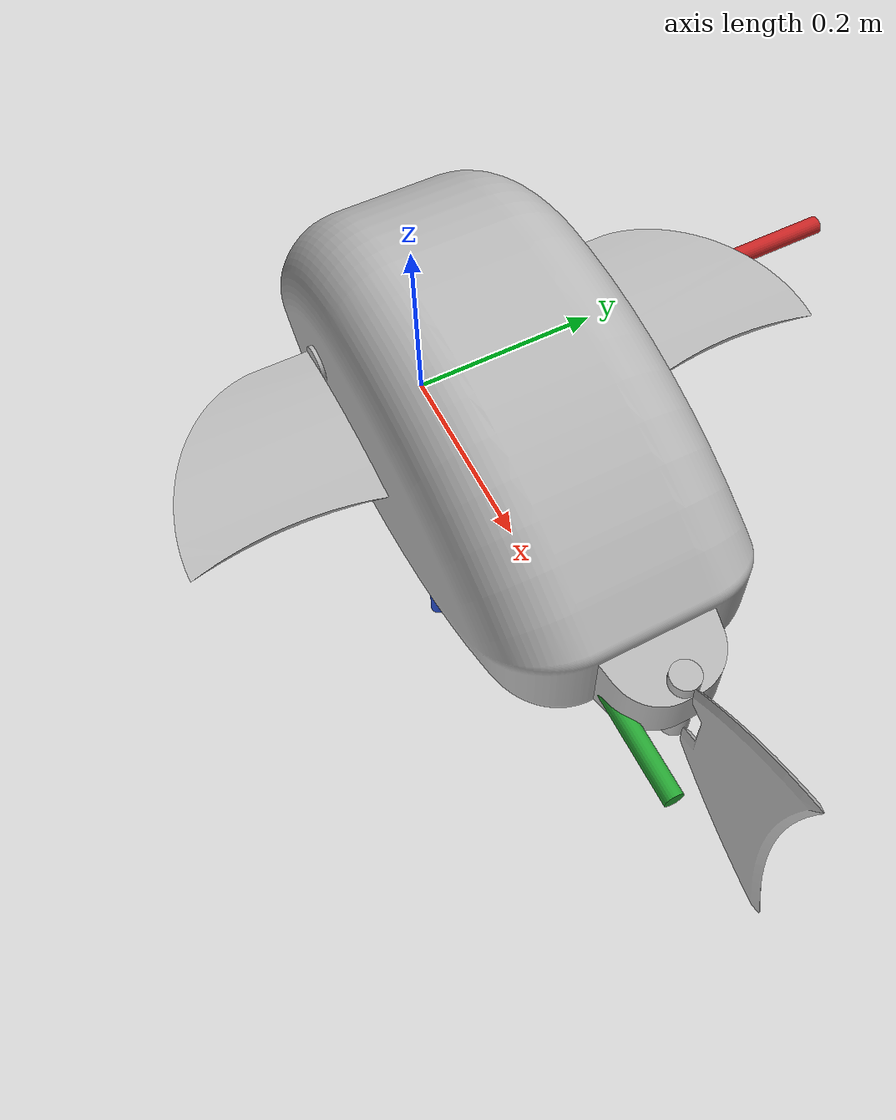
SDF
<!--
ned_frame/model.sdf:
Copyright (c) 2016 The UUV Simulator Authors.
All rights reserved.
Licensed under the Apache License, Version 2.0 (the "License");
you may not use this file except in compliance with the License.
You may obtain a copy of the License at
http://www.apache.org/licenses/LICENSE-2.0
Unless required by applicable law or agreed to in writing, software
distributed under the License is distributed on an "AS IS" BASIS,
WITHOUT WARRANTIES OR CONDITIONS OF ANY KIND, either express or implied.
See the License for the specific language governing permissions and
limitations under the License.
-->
<sdf version="1.6">
 <world name="fish_ocean_world">
  <physics name="default_physics" default="true" type="ode">
   <max_step_size>0.002</max_step_size>
   <real_time_factor>1</real_time_factor>
   <real_time_update_rate>500</real_time_update_rate>
  </physics>
  <scene>
   <ambient>0.01 0.01 0.01 1.0</ambient>
   <sky><clouds><speed>12</speed></clouds></sky>
   <shadows>1</shadows>
  </scene>
  <spherical_coordinates>
   <latitude_deg>56.71897669633431</latitude_deg>
   <longitude_deg>3.515625</longitude_deg>
  </spherical_coordinates>
  <include><uri>model://sun</uri></include>
  <light type="directional" name="sun1">
   <pose>50 0 150 0 0 0</pose>
   <diffuse>1 1 1 1</diffuse>
   <specular>.1 .1 .1 1</specular>
   <direction>0.3 0.3 -1</direction>
   <cast_shadows>false</cast_shadows>
  </light>
  <light type="directional" name="sun_diffuse">
   <pose>-50 0 -150 0 0 0</pose>
   <diffuse>0.6 0.6 0.6 1</diffuse>
   <specular>0 0 0 1</specular>
   <direction>-0.3 -0.3 -1</direction>
   <cast_shadows>false</cast_shadows>
  </light>
  <include><uri>model://ned_frame</uri></include>
  <include><uri>model://fish_hpurv</uri></include>
  <plugin name="gazebo_ros" filename="libgazebo_ros_state.so"><ros><namespace>/gazebo</namespace></ros></plugin>
  <plugin name="underwater_current_plugin" filename="libuuv_underwater_current_ros_plugin.so">
   <namespace>hydrodynamics</namespace>
   <constant_current>
    <topic>current_velocity</topic>
    <velocity><mean>0</mean><min>0</min><max>5</max><mu>0.0</mu><noiseAmp>0.0</noiseAmp></velocity>
    <horizontal_angle>
     <mean>0</mean>
     <min>-3.141592653589793238</min>
     <max>3.141592653589793238</max>
     <mu>0.0</mu>
     <noiseAmp>0.0</noiseAmp>
    </horizontal_angle>
    <vertical_angle>
     <mean>0</mean>
     <min>-3.141592653589793238</min>
     <max>3.141592653589793238</max>
     <mu>0.0</mu>
     <noiseAmp>0.0</noiseAmp>
    </vertical_angle>
   </constant_current>
  </plugin>
  <plugin name="sc_interface" filename="libuuv_sc_ros_interface_plugin.so"/>
 </world>
</sdf>

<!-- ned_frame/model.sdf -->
<sdf version='1.5'>
    <model name="world_ned">

      <pose>0 0 0 0 0 0</pose>
      <static>true</static>

      <link name="world_ned">
        <gravity>0</gravity>
        <pose>0 0 0 3.14159265359 0 1.5707963267948966</pose>

        <visual name="N_visual">
          <pose>0.25 0 0 1.5707963267948966 0 1.5707963267948966</pose>
          <geometry>
            <cylinder>
              <radius>0.01</radius>
              <length>0.5</length>
            </cylinder>
          </geometry>
          <material>
            <script>
              <uri>file://media/materials/scripts/gazebo.material</uri>
              <name>Gazebo/Red</name>
            </script>
          </material>
        </visual>

        <visual name="E_visual">
          <pose>0 0.25 0 1.5707963267948966 0 0</pose>
          <geometry>
            <cylinder>
              <radius>0.01</radius>
              <length>0.5</length>
            </cylinder>
          </geometry>
          <material>
            <script>
              <uri>file://media/materials/scripts/gazebo.material</uri>
              <name>Gazebo/Green</name>
            </script>
          </material>
        </visual>

        <visual name="D_visual">
          <pose>0 0 0.25 0 0 0</pose>
          <geometry>
            <cylinder>
              <radius>0.01</radius>
              <length>0.5</length>
            </cylinder>
          </geometry>
          <material>
            <script>
              <uri>file://media/materials/scripts/gazebo.material</uri>
              <name>Gazebo/Blue</name>
            </script>
          </material>
        </visual>
      </link>
    </model>
</sdf>

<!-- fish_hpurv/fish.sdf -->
<sdf version='1.6'>
  <model name='fish_hpurv'>
    <link name='link_base'>
      <inertial>
        <pose>0.032582 0.049301 -0.019765 1.57 -0 0</pose>
        <mass>12.2</mass>
        <inertia>
          <ixx>0.0104225</ixx>
          <ixy>-1.73196e-18</ixy>
          <ixz>-3.47083e-18</ixz>
          <iyy>0.010101</iyy>
          <iyz>-2.56038e-07</iyz>
          <izz>0.0104225</izz>
        </inertia>
      </inertial>
      <collision name='link_base_collision'>
        <pose>0.032582 0.049301 -0.020428 1.57 -0 0</pose>
        <geometry>
          <mesh>
            <scale>1 1 1</scale>
            <uri>/home/uav/ros2_ws/install/fish_hpurv/share/fish_hpurv/meshes/link_base.stl</uri>
          </mesh>
        </geometry>
        <surface>
          <contact>
            <ode/>
          </contact>
          <friction>
            <ode/>
          </friction>
        </surface>
      </collision>
      <collision name='link_base_fixed_joint_lump__imu_link_collision_1'>
        <pose>0.032582 0.049301 0.02 0 -0 0</pose>
        <geometry>
          <box>
            <size>0.01 0.01 0.01</size>
          </box>
        </geometry>
        <surface>
          <contact>
            <ode/>
          </contact>
          <friction>
            <ode/>
          </friction>
        </surface>
      </collision>
      <collision name='link_base_fixed_joint_lump__laser_frame_collision_2'>
        <pose>0.032582 0.049301 0.02 0 -0 0</pose>
        <geometry>
          <cylinder>
            <length>0.04</length>
            <radius>0.05</radius>
          </cylinder>
        </geometry>
        <surface>
          <contact>
            <ode/>
          </contact>
          <friction>
            <ode/>
          </friction>
        </surface>
      </collision>
      <visual name='link_base_visual'>
        <pose>0.032582 0.049301 0.02 1.57 -0 0</pose>
        <geometry>
          <mesh>
            <scale>1 1 1</scale>
            <uri>/home/uav/ros2_ws/install/fish_hpurv/share/fish_hpurv/meshes/link_base.stl</uri>
          </mesh>
        </geometry>
      </visual>
      <visual name='link_base_fixed_joint_lump__imu_link_visual_1'>
        <pose>0.032582 0.049301 0.02 0 -0 0</pose>
        <geometry>
          <box>
            <size>0.01 0.01 0.01</size>
          </box>
        </geometry>
      </visual>
      <visual name='link_base_fixed_joint_lump__laser_frame_visual_2'>
        <pose>0.032582 0.049301 0.02 0 -0 0</pose>
        <geometry>
          <cylinder>
            <length>0.04</length>
            <radius>0.05</radius>
          </cylinder>
        </geometry>
        <material>
          <script>
            <name>Gazebo/Red</name>
            <uri>file://media/materials/scripts/gazebo.material</uri>
          </script>
        </material>
      </visual>
      <sensor name='dvl_sensor' type='ray'>
        <pose>0.03 -0.085 -0.06 3.14159 0.001593 3.14159</pose>
        <visualize>1</visualize>
        <update_rate>10</update_rate>
        <ray>
          <scan>
            <horizontal>
              <samples>4</samples>
              <min_angle>0</min_angle>
              <max_angle>6.28319</max_angle>
              <resolution>1</resolution>
            </horizontal>
            <vertical>
              <samples>1</samples>
              <min_angle>1.2217</min_angle>
              <max_angle>1.2217</max_angle>
            </vertical>
          </scan>
          <range>
            <min>0.1</min>
            <max>100</max>
          </range>
        </ray>
        <plugin name='custom_dvl_plugin' filename='libfish_dvl_plugin.so'/>
      </sensor>
      <sensor name='imu_sensor' type='imu'>
        <update_rate>50</update_rate>
        <always_on>1</always_on>
        <visualize>1</visualize>
        <plugin name='imu_plugin' filename='libgazebo_ros_imu_sensor.so'>
          <ros>
            <argument>~/out:=/imu/data</argument>
          </ros>
          <topicName>/imu/data</topicName>
          <frameName>imu_link</frameName>
        </plugin>
        <pose>0.032582 0.049301 0.02 0 -0 0</pose>
      </sensor>
      <sensor name='laser' type='ray'>
        <visualize>1</visualize>
        <update_rate>10</update_rate>
        <ray>
          <scan>
            <horizontal>
              <samples>360</samples>
              <min_angle>-3.14</min_angle>
              <max_angle>3.14</max_angle>
              <resolution>1</resolution>
            </horizontal>
          </scan>
          <range>
            <min>0.3</min>
            <max>12</max>
          </range>
        </ray>
        <plugin name='laser_controller' filename='libgazebo_ros_ray_sensor.so'>
          <ros>
            <argument>~/out:=/scan</argument>
          </ros>
          <output_type>sensor_msgs/LaserScan</output_type>
          <frame_name>laser_frame</frame_name>
        </plugin>
        <pose>0.032582 0.049301 0.02 0 -0 0</pose>
      </sensor>
    </link>
    <joint name='caudal_joint' type='revolute'>
      <pose relative_to='link_base'>0.425323 0.05 0.06 0 -0 0</pose>
      <parent>link_base</parent>
      <child>link_caudal</child>
      <axis>
        <xyz>0 0 1</xyz>
        <limit>
          <lower>-0.523599</lower>
          <upper>0.523599</upper>
          <effort>10</effort>
          <velocity>10</velocity>
        </limit>
        <dynamics>
          <spring_reference>0</spring_reference>
          <spring_stiffness>0</spring_stiffness>
        </dynamics>
      </axis>
    </joint>
    <link name='link_caudal'>
      <pose relative_to='caudal_joint'>0 0 0 0 -0 0</pose>
      <inertial>
        <pose>-0.378805 0 -0.05 1.5708 -0 0</pose>
        <mass>0.2</mass>
        <inertia>
          <ixx>0.005</ixx>
          <ixy>0</ixy>
          <ixz>0</ixz>
          <iyy>0.005</iyy>
          <iyz>0</iyz>
          <izz>0.005</izz>
        </inertia>
      </inertial>
      <collision name='link_caudal_collision'>
        <pose>-0.378805 0 -0.05 1.5708 -0 0</pose>
        <geometry>
          <mesh>
            <scale>1 1 1</scale>
            <uri>/home/uav/ros2_ws/install/fish_hpurv/share/fish_hpurv/meshes/link_caudal.stl</uri>
          </mesh>
        </geometry>
      </collision>
      <visual name='link_caudal_visual'>
        <pose>-0.378805 0 -0.05 1.5708 -0 0</pose>
        <geometry>
          <mesh>
            <scale>1 1 1</scale>
            <uri>/home/uav/ros2_ws/install/fish_hpurv/share/fish_hpurv/meshes/link_caudal.stl</uri>
          </mesh>
        </geometry>
      </visual>
    </link>
    <joint name='joint1' type='revolute'>
      <pose relative_to='link_base'>-0.05 0.18 0.035 1.57 -0 0</pose>
      <parent>link_base</parent>
      <child>link_pectoral_left</child>
      <axis>
        <xyz>0 0 1</xyz>
        <limit>
          <lower>-0.785398</lower>
          <upper>0.785398</upper>
          <effort>10</effort>
          <velocity>10</velocity>
        </limit>
        <dynamics>
          <spring_reference>0</spring_reference>
          <spring_stiffness>0</spring_stiffness>
        </dynamics>
      </axis>
    </joint>
    <link name='link_pectoral_left'>
      <pose relative_to='joint1'>0 0 0 0 -0 0</pose>
      <inertial>
        <pose>0.082983 -0.047058 0.13 3.14 -0 0</pose>
        <mass>0.1</mass>
        <inertia>
          <ixx>0.001</ixx>
          <ixy>0</ixy>
          <ixz>0</ixz>
          <iyy>0.001</iyy>
          <iyz>0</iyz>
          <izz>0.001</izz>
        </inertia>
      </inertial>
      <collision name='link_pectoral_left_collision'>
        <pose>0.082983 -0.047058 0.13 3.14 -0 0</pose>
        <geometry>
          <mesh>
            <scale>1 1 1</scale>
            <uri>/home/uav/ros2_ws/install/fish_hpurv/share/fish_hpurv/meshes/link_pectoral_left.stl</uri>
          </mesh>
        </geometry>
      </collision>
      <visual name='link_pectoral_left_visual'>
        <pose>0.082983 -0.047058 0.13 3.14 -0 0</pose>
        <geometry>
          <mesh>
            <scale>1 1 1</scale>
            <uri>/home/uav/ros2_ws/install/fish_hpurv/share/fish_hpurv/meshes/link_pectoral_left.stl</uri>
          </mesh>
        </geometry>
      </visual>
    </link>
    <joint name='joint2' type='revolute'>
      <pose relative_to='link_base'>-0.05 -0.08 0.035 -1.57 0 0</pose>
      <parent>link_base</parent>
      <child>link_pectoral_right</child>
      <axis>
        <xyz>0 0 1</xyz>
        <limit>
          <lower>-0.785398</lower>
          <upper>0.785398</upper>
          <effort>10</effort>
          <velocity>10</velocity>
        </limit>
        <dynamics>
          <spring_reference>0</spring_reference>
          <spring_stiffness>0</spring_stiffness>
        </dynamics>
      </axis>
    </joint>
    <link name='link_pectoral_right'>
      <pose relative_to='joint2'>0 0 0 0 -0 0</pose>
      <inertial>
        <pose>0.082983 0.047058 0.13 0 -0 0</pose>
        <mass>0.1</mass>
        <inertia>
          <ixx>0.001</ixx>
          <ixy>0</ixy>
          <ixz>0</ixz>
          <iyy>0.001</iyy>
          <iyz>0</iyz>
          <izz>0.001</izz>
        </inertia>
      </inertial>
      <collision name='link_pectoral_right_collision'>
        <pose>0.082983 0.047058 0.13 0 -0 0</pose>
        <geometry>
          <mesh>
            <scale>1 1 1</scale>
            <uri>/home/uav/ros2_ws/install/fish_hpurv/share/fish_hpurv/meshes/link_pectoral_right.stl</uri>
          </mesh>
        </geometry>
      </collision>
      <visual name='link_pectoral_right_visual'>
        <pose>0.082983 0.047058 0.13 0 -0 0</pose>
        <geometry>
          <mesh>
            <scale>1 1 1</scale>
            <uri>/home/uav/ros2_ws/install/fish_hpurv/share/fish_hpurv/meshes/link_pectoral_right.stl</uri>
          </mesh>
        </geometry>
      </visual>
    </link>
    <static>0</static>
    <plugin name='buoyancy_plugin' filename='libBuoyancyPlugin.so'>
      <fluid_density>1000</fluid_density>
      <link name='link_base'>
        <volume>0.0122</volume>
        <center_of_volume>0.0325815 0.0493006 0.02</center_of_volume>
      </link>
      <link name='link_caudal'>
        <volume>0.0002</volume>
        <center_of_volume>-0.378805 0 -0.05</center_of_volume>
      </link>
      <link name='link_pectoral_left'>
        <volume>0.0001</volume>
        <center_of_volume>0.0829833 -0.0470575 0.13</center_of_volume>
      </link>
      <link name='link_pectoral_right'>
        <volume>0.0001</volume>
        <center_of_volume>0.0829833 0.0470575 0.13</center_of_volume>
      </link>
    </plugin>
    <plugin name="constant_force_plugin" filename="libforce_plugin.so"/>
  </model>
</sdf>
